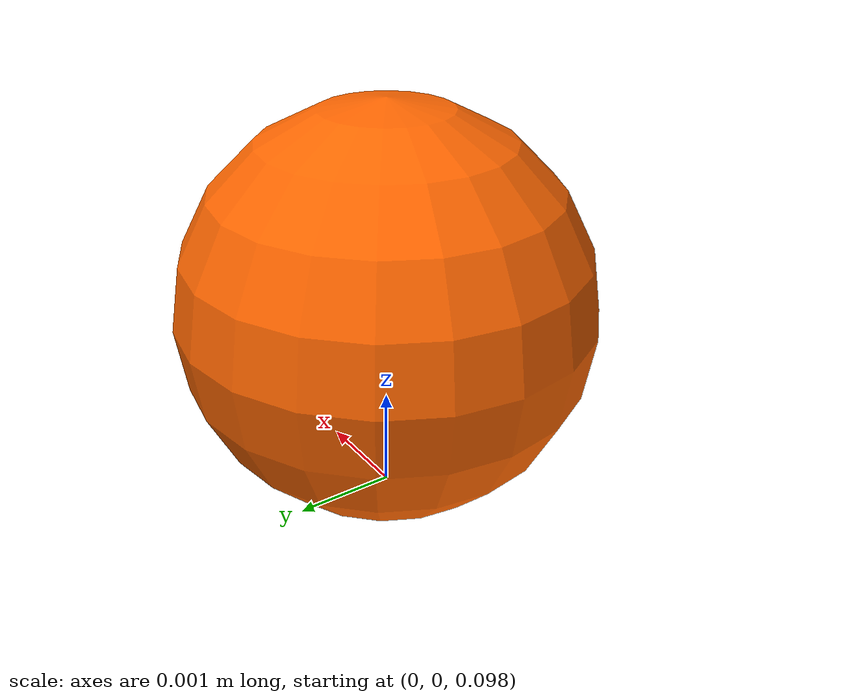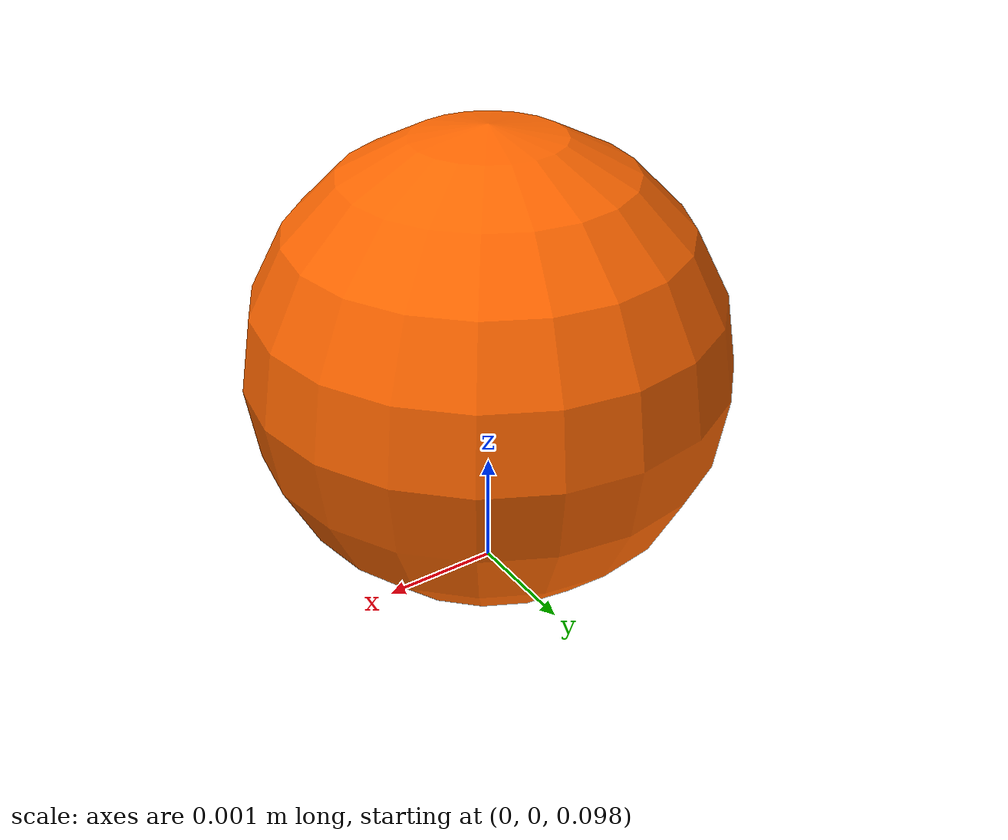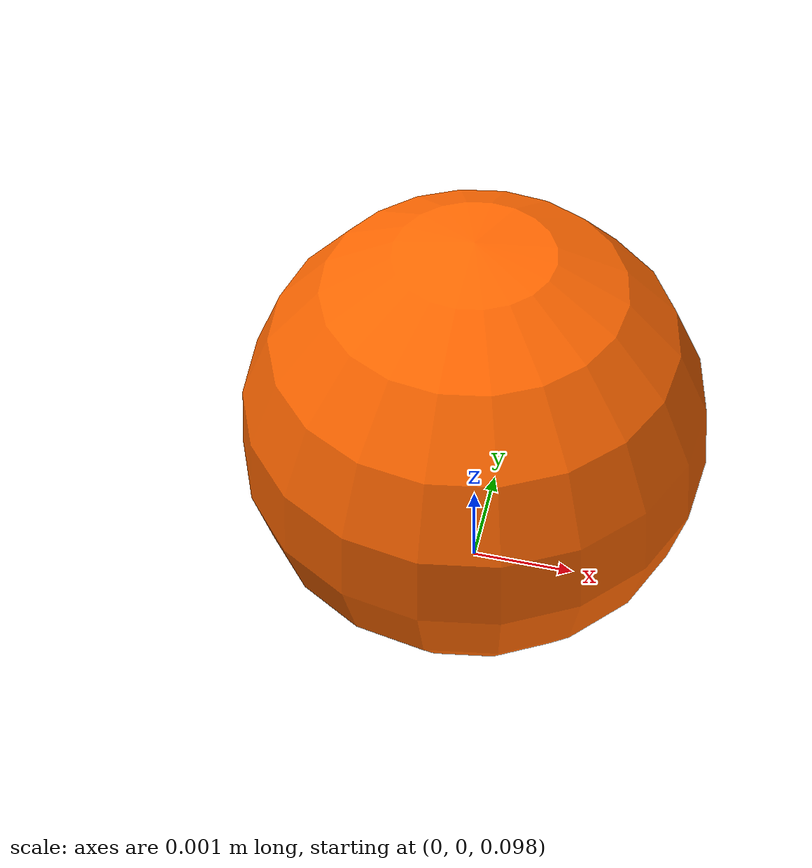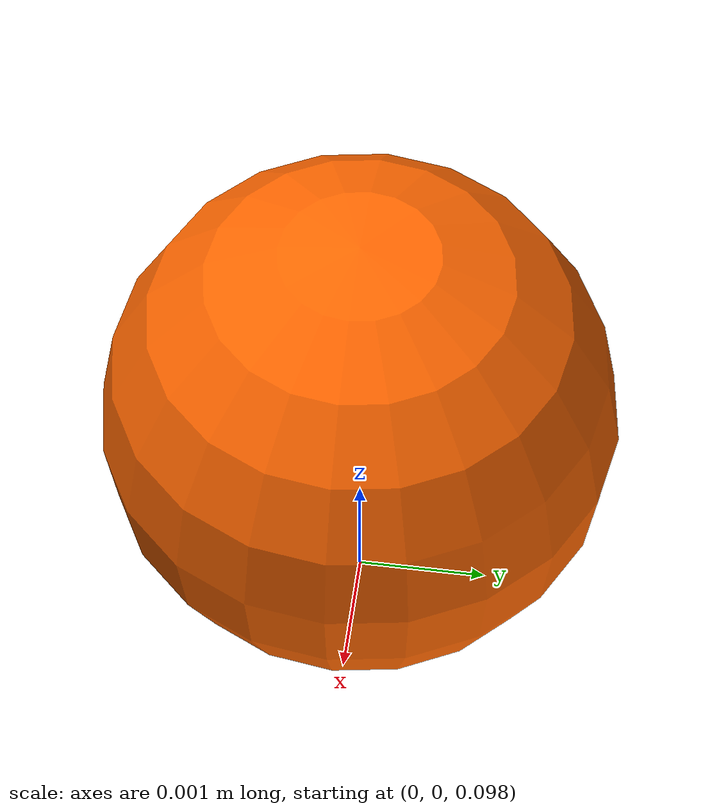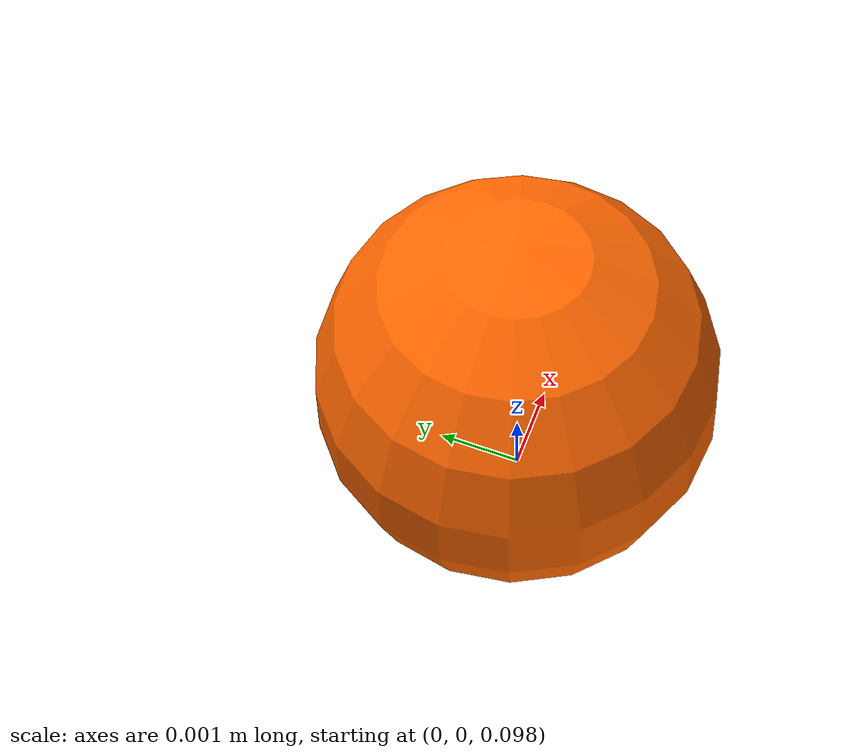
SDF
<?xml version="1.0"?>
<sdf version="1.6">
  <world name="tactile_uniformity_test">

    <include><uri>model://sun</uri></include>
    <include><uri>model://ground_plane</uri></include>

    <light name="ambient_light" type="directional">
      <pose>0 0 10 0 0 0</pose>
      <diffuse>0.8 0.8 0.8 1</diffuse>
      <specular>0.2 0.2 0.2 1</specular>
      <direction>-0.5 -0.5 -1</direction>
      <cast_shadows>true</cast_shadows>
    </light>

    <model name="force_probe">
      <pose>0 0 0.10 0 0 0</pose>

      <link name="probe_link">
        <gravity>false</gravity>
        <inertial>
          <mass>0.05</mass>
          <inertia>
            <!-- Solid sphere: I = 2mr²/5, r=0.002 -->
            <ixx>8e-8</ixx>
            <iyy>8e-8</iyy>
            <izz>8e-8</izz>
            <ixy>0.0</ixy><ixz>0.0</ixz><iyz>0.0</iyz>
          </inertia>
        </inertial>

        <collision name="probe_tip">
          <geometry>
            <sphere><radius>0.002</radius></sphere>
          </geometry>
          <surface>
            <contact>
              <ode>
                <kp>10000.0</kp>
                <kd>50.0</kd>
                <max_vel>0.01</max_vel>
                <min_depth>0.0001</min_depth>
              </ode>
            </contact>
            <friction>
              <ode><mu>0.5</mu><mu2>0.5</mu2></ode>
            </friction>
          </surface>
        </collision>

        <visual name="probe_visual">
          <geometry>
            <sphere><radius>0.002</radius></sphere>
          </geometry>
          <material>
            <ambient>1.0 0.3 0.0 1</ambient>
            <diffuse>1.0 0.4 0.0 1</diffuse>
          </material>
        </visual>
      </link>

    </model>

    <!--
      The sensor is pinned to world via its own model SDF joint.
      No hardcoded sensor name needed here.
    -->
    <physics type="ode">
      <real_time_update_rate>1000</real_time_update_rate>
      <max_step_size>0.001</max_step_size>
      <ode>
        <solver>
          <type>quick</type>
          <iters>50</iters>
          <sor>1.3</sor>
        </solver>
        <constraints>
          <cfm>0.0</cfm>
          <erp>0.2</erp>
          <contact_max_correcting_vel>100.0</contact_max_correcting_vel>
          <contact_surface_layer>0.0005</contact_surface_layer>
        </constraints>
      </ode>
    </physics>

  </world>
</sdf>
